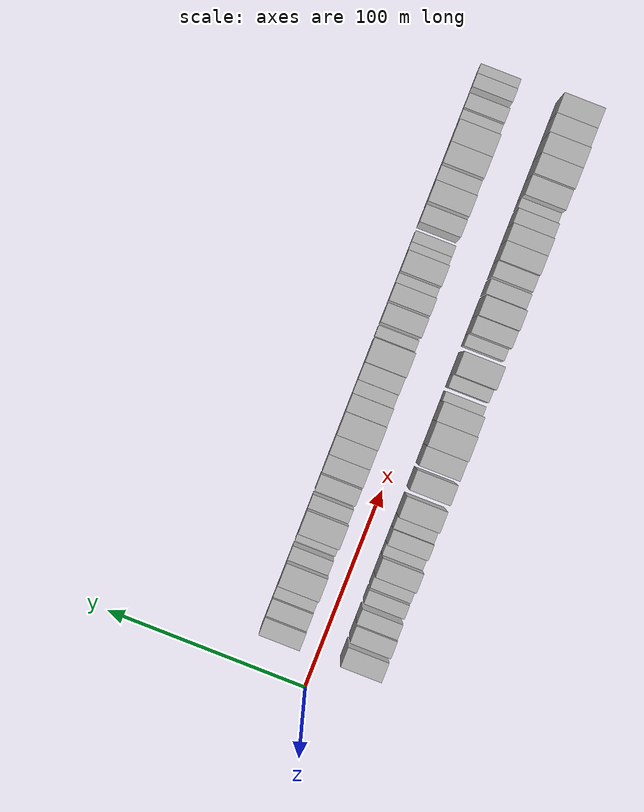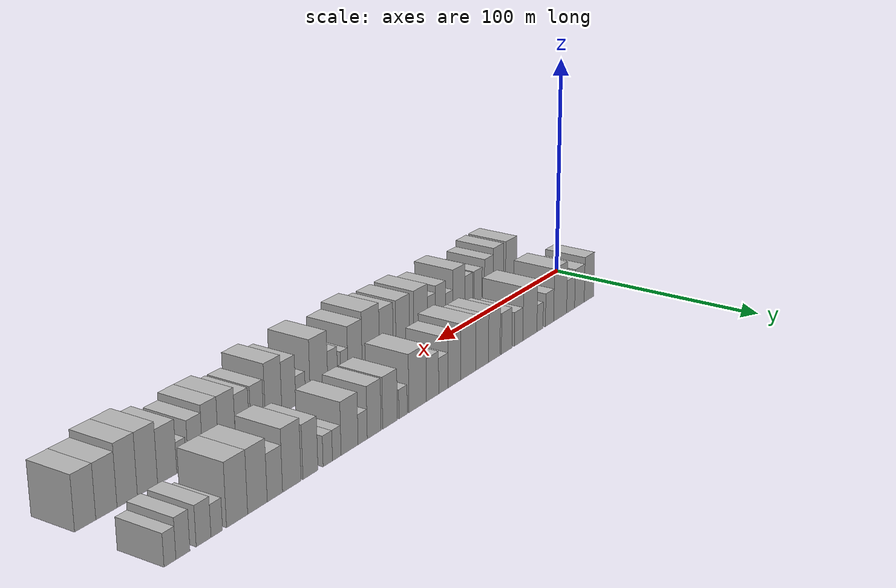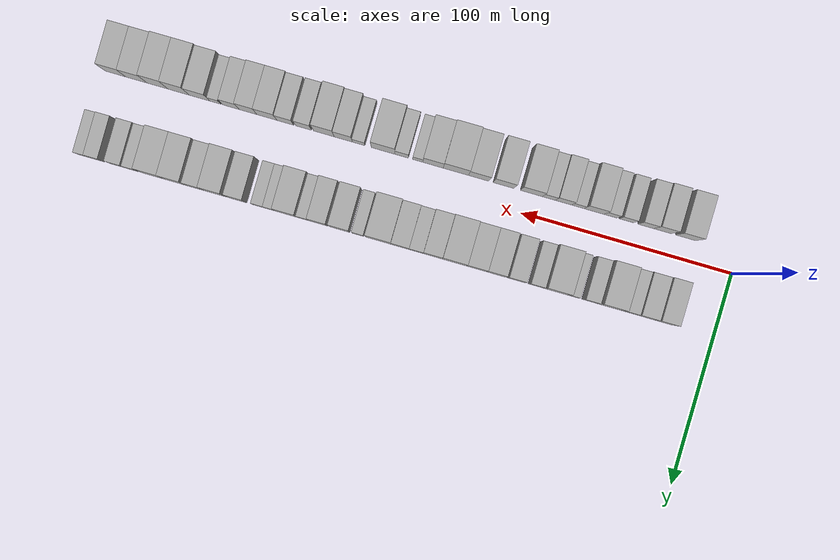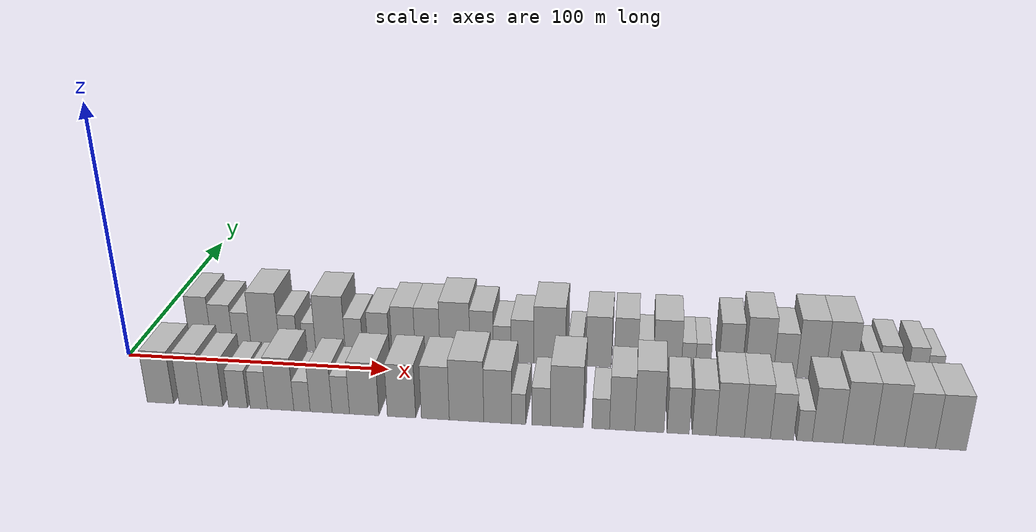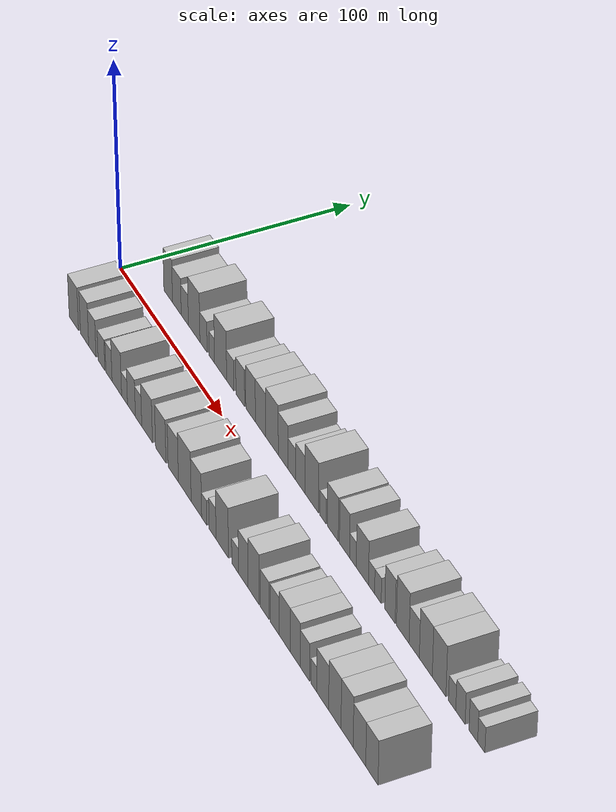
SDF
<sdf version="1.6">
 <world name="default">
  <scene>
   <sky><clouds><speed>12</speed></clouds></sky>
   <ambient>0.4 0.4 0.4 1</ambient>
   <background>0.7 0.7 0.7 1</background>
   <shadows>1</shadows>
  </scene>
  <gravity>0 0 -9.8066</gravity>
  <magnetic_field>6e-06 2.3e-05 -4.2e-05</magnetic_field>
  <physics default="0" name="default_physics" type="ode">
   <ode>
    <solver>
     <type>quick</type>
     <iters>10</iters>
     <sor>1.0</sor>
     <use_dynamic_moi_rescaling>0</use_dynamic_moi_rescaling>
    </solver>
    <constraints>
     <cfm>0</cfm>
     <erp>0.2</erp>
     <contact_max_correcting_vel>100</contact_max_correcting_vel>
     <contact_surface_layer>0.001</contact_surface_layer>
    </constraints>
   </ode>
   <max_step_size>0.004</max_step_size>
   <real_time_factor>1</real_time_factor>
   <real_time_update_rate>250</real_time_update_rate>
  </physics>
  <light name="sun" type="directional">
   <pose>0 0 10 0 0 0</pose>
   <diffuse>0.8 0.8 0.8 1</diffuse>
   <specular>0.2 0.2 0.2 1</specular>
   <attenuation>
    <range>1000</range>
    <constant>0.9</constant>
    <linear>0.01</linear>
    <quadratic>0.001</quadratic>
   </attenuation>
   <direction>-0.5 0.1 -0.9</direction>
  </light>
  <model name="building_1">
   <static>1</static>
   <pose>24.3117 20.0000 0 0.000000 0.000000 1.570796</pose>
   <link name="link">
    <pose>0 0 10.50 0 0 0</pose>
    <collision name="collision"><geometry><box><size>20.0000 8.6234 21.0000</size></box></geometry></collision>
    <visual name="visual">
     <cast_shadows>0</cast_shadows>
     <geometry><box><size>20.0000 8.6234 21.0000</size></box></geometry>
     <material>
      <script>
       <uri>model://HANNAS_wall/materials/scripts</uri>
       <uri>model://HANNAS_wall/materials/textures</uri>
       <name>vrc/HANNAS_wall</name>
      </script>
     </material>
    </visual>
   </link>
  </model>
  <model name="building_2">
   <static>1</static>
   <pose>32.9170 20.0000 0 0.000000 0.000000 1.570796</pose>
   <link name="link">
    <pose>0 0 9.00 0 0 0</pose>
    <collision name="collision"><geometry><box><size>20.0000 8.5872 18.0000</size></box></geometry></collision>
    <visual name="visual">
     <cast_shadows>0</cast_shadows>
     <geometry><box><size>20.0000 8.5872 18.0000</size></box></geometry>
     <material>
      <script>
       <uri>model://HANNAS_wall/materials/scripts</uri>
       <uri>model://HANNAS_wall/materials/textures</uri>
       <name>vrc/HANNAS_wall</name>
      </script>
     </material>
    </visual>
   </link>
  </model>
  <model name="building_3">
   <static>1</static>
   <pose>40.7467 20.0000 0 0.000000 0.000000 1.570796</pose>
   <link name="link">
    <pose>0 0 7.50 0 0 0</pose>
    <collision name="collision"><geometry><box><size>20.0000 7.0722 15.0000</size></box></geometry></collision>
    <visual name="visual">
     <cast_shadows>0</cast_shadows>
     <geometry><box><size>20.0000 7.0722 15.0000</size></box></geometry>
     <material>
      <script>
       <uri>model://HANNAS_wall/materials/scripts</uri>
       <uri>model://HANNAS_wall/materials/textures</uri>
       <name>vrc/HANNAS_wall</name>
      </script>
     </material>
    </visual>
   </link>
  </model>
  <model name="building_4">
   <static>1</static>
   <pose>49.9122 20.0000 0 0.000000 0.000000 1.570796</pose>
   <link name="link">
    <pose>0 0 12.00 0 0 0</pose>
    <collision name="collision"><geometry><box><size>20.0000 11.2589 24.0000</size></box></geometry></collision>
    <visual name="visual">
     <cast_shadows>0</cast_shadows>
     <geometry><box><size>20.0000 11.2589 24.0000</size></box></geometry>
     <material>
      <script>
       <uri>model://HANNAS_wall/materials/scripts</uri>
       <uri>model://HANNAS_wall/materials/textures</uri>
       <name>vrc/HANNAS_wall</name>
      </script>
     </material>
    </visual>
   </link>
  </model>
  <model name="building_5">
   <static>1</static>
   <pose>59.0413 20.0000 0 0.000000 0.000000 1.570796</pose>
   <link name="link">
    <pose>0 0 7.50 0 0 0</pose>
    <collision name="collision"><geometry><box><size>20.0000 6.9991 15.0000</size></box></geometry></collision>
    <visual name="visual">
     <cast_shadows>0</cast_shadows>
     <geometry><box><size>20.0000 6.9991 15.0000</size></box></geometry>
     <material>
      <script>
       <uri>model://HANNAS_wall/materials/scripts</uri>
       <uri>model://HANNAS_wall/materials/textures</uri>
       <name>vrc/HANNAS_wall</name>
      </script>
     </material>
    </visual>
   </link>
  </model>
  <model name="building_6">
   <static>1</static>
   <pose>67.0757 20.0000 0 0.000000 0.000000 1.570796</pose>
   <link name="link">
    <pose>0 0 6.00 0 0 0</pose>
    <collision name="collision"><geometry><box><size>20.0000 5.0698 12.0000</size></box></geometry></collision>
    <visual name="visual">
     <cast_shadows>0</cast_shadows>
     <geometry><box><size>20.0000 5.0698 12.0000</size></box></geometry>
     <material>
      <script>
       <uri>model://HANNAS_wall/materials/scripts</uri>
       <uri>model://HANNAS_wall/materials/textures</uri>
       <name>vrc/HANNAS_wall</name>
      </script>
     </material>
    </visual>
   </link>
  </model>
  <model name="building_7">
   <static>1</static>
   <pose>75.3780 20.0000 0 0.000000 0.000000 1.570796</pose>
   <link name="link">
    <pose>0 0 12.00 0 0 0</pose>
    <collision name="collision"><geometry><box><size>20.0000 11.5348 24.0000</size></box></geometry></collision>
    <visual name="visual">
     <cast_shadows>0</cast_shadows>
     <geometry><box><size>20.0000 11.5348 24.0000</size></box></geometry>
     <material>
      <script>
       <uri>model://HANNAS_wall/materials/scripts</uri>
       <uri>model://HANNAS_wall/materials/textures</uri>
       <name>vrc/HANNAS_wall</name>
      </script>
     </material>
    </visual>
   </link>
  </model>
  <model name="building_8">
   <static>1</static>
   <pose>84.5590 20.0000 0 0.000000 0.000000 1.570796</pose>
   <link name="link">
    <pose>0 0 7.50 0 0 0</pose>
    <collision name="collision"><geometry><box><size>20.0000 6.8272 15.0000</size></box></geometry></collision>
    <visual name="visual">
     <cast_shadows>0</cast_shadows>
     <geometry><box><size>20.0000 6.8272 15.0000</size></box></geometry>
     <material>
      <script>
       <uri>model://HANNAS_wall/materials/scripts</uri>
       <uri>model://HANNAS_wall/materials/textures</uri>
       <name>vrc/HANNAS_wall</name>
      </script>
     </material>
    </visual>
   </link>
  </model>
  <model name="building_9">
   <static>1</static>
   <pose>94.1099 20.0000 0 0.000000 0.000000 1.570796</pose>
   <link name="link">
    <pose>0 0 9.00 0 0 0</pose>
    <collision name="collision"><geometry><box><size>20.0000 8.2747 18.0000</size></box></geometry></collision>
    <visual name="visual">
     <cast_shadows>0</cast_shadows>
     <geometry><box><size>20.0000 8.2747 18.0000</size></box></geometry>
     <material>
      <script>
       <uri>model://HANNAS_wall/materials/scripts</uri>
       <uri>model://HANNAS_wall/materials/textures</uri>
       <name>vrc/HANNAS_wall</name>
      </script>
     </material>
    </visual>
   </link>
  </model>
  <model name="building_10">
   <static>1</static>
   <pose>103.6849 20.0000 0 0.000000 0.000000 1.570796</pose>
   <link name="link">
    <pose>0 0 10.50 0 0 0</pose>
    <collision name="collision"><geometry><box><size>20.0000 8.8753 21.0000</size></box></geometry></collision>
    <visual name="visual">
     <cast_shadows>0</cast_shadows>
     <geometry><box><size>20.0000 8.8753 21.0000</size></box></geometry>
     <material>
      <script>
       <uri>model://HANNAS_wall/materials/scripts</uri>
       <uri>model://HANNAS_wall/materials/textures</uri>
       <name>vrc/HANNAS_wall</name>
      </script>
     </material>
    </visual>
   </link>
  </model>
  <model name="building_11">
   <static>1</static>
   <pose>112.8992 20.0000 0 0.000000 0.000000 1.570796</pose>
   <link name="link">
    <pose>0 0 10.50 0 0 0</pose>
    <collision name="collision"><geometry><box><size>20.0000 9.5532 21.0000</size></box></geometry></collision>
    <visual name="visual">
     <cast_shadows>0</cast_shadows>
     <geometry><box><size>20.0000 9.5532 21.0000</size></box></geometry>
     <material>
      <script>
       <uri>model://HANNAS_wall/materials/scripts</uri>
       <uri>model://HANNAS_wall/materials/textures</uri>
       <name>vrc/HANNAS_wall</name>
      </script>
     </material>
    </visual>
   </link>
  </model>
  <model name="building_12">
   <static>1</static>
   <pose>123.3784 20.0000 0 0.000000 0.000000 1.570796</pose>
   <link name="link">
    <pose>0 0 12.00 0 0 0</pose>
    <collision name="collision"><geometry><box><size>20.0000 11.4053 24.0000</size></box></geometry></collision>
    <visual name="visual">
     <cast_shadows>0</cast_shadows>
     <geometry><box><size>20.0000 11.4053 24.0000</size></box></geometry>
     <material>
      <script>
       <uri>model://HANNAS_wall/materials/scripts</uri>
       <uri>model://HANNAS_wall/materials/textures</uri>
       <name>vrc/HANNAS_wall</name>
      </script>
     </material>
    </visual>
   </link>
  </model>
  <model name="building_13">
   <static>1</static>
   <pose>133.4940 20.0000 0 0.000000 0.000000 1.570796</pose>
   <link name="link">
    <pose>0 0 10.50 0 0 0</pose>
    <collision name="collision"><geometry><box><size>20.0000 8.8259 21.0000</size></box></geometry></collision>
    <visual name="visual">
     <cast_shadows>0</cast_shadows>
     <geometry><box><size>20.0000 8.8259 21.0000</size></box></geometry>
     <material>
      <script>
       <uri>model://HANNAS_wall/materials/scripts</uri>
       <uri>model://HANNAS_wall/materials/textures</uri>
       <name>vrc/HANNAS_wall</name>
      </script>
     </material>
    </visual>
   </link>
  </model>
  <model name="building_14">
   <static>1</static>
   <pose>141.2551 20.0000 0 0.000000 0.000000 1.570796</pose>
   <link name="link">
    <pose>0 0 7.50 0 0 0</pose>
    <collision name="collision"><geometry><box><size>20.0000 6.6962 15.0000</size></box></geometry></collision>
    <visual name="visual">
     <cast_shadows>0</cast_shadows>
     <geometry><box><size>20.0000 6.6962 15.0000</size></box></geometry>
     <material>
      <script>
       <uri>model://HANNAS_wall/materials/scripts</uri>
       <uri>model://HANNAS_wall/materials/textures</uri>
       <name>vrc/HANNAS_wall</name>
      </script>
     </material>
    </visual>
   </link>
  </model>
  <model name="building_15">
   <static>1</static>
   <pose>148.8612 20.0000 0 0.000000 0.000000 1.570796</pose>
   <link name="link">
    <pose>0 0 9.00 0 0 0</pose>
    <collision name="collision"><geometry><box><size>20.0000 8.5161 18.0000</size></box></geometry></collision>
    <visual name="visual">
     <cast_shadows>0</cast_shadows>
     <geometry><box><size>20.0000 8.5161 18.0000</size></box></geometry>
     <material>
      <script>
       <uri>model://HANNAS_wall/materials/scripts</uri>
       <uri>model://HANNAS_wall/materials/textures</uri>
       <name>vrc/HANNAS_wall</name>
      </script>
     </material>
    </visual>
   </link>
  </model>
  <model name="building_16">
   <static>1</static>
   <pose>159.0766 20.0000 0 0.000000 0.000000 1.570796</pose>
   <link name="link">
    <pose>0 0 12.00 0 0 0</pose>
    <collision name="collision"><geometry><box><size>20.0000 11.9148 24.0000</size></box></geometry></collision>
    <visual name="visual">
     <cast_shadows>0</cast_shadows>
     <geometry><box><size>20.0000 11.9148 24.0000</size></box></geometry>
     <material>
      <script>
       <uri>model://HANNAS_wall/materials/scripts</uri>
       <uri>model://HANNAS_wall/materials/textures</uri>
       <name>vrc/HANNAS_wall</name>
      </script>
     </material>
    </visual>
   </link>
  </model>
  <model name="building_17">
   <static>1</static>
   <pose>168.8202 20.0000 0 0.000000 0.000000 1.570796</pose>
   <link name="link">
    <pose>0 0 6.00 0 0 0</pose>
    <collision name="collision"><geometry><box><size>20.0000 5.5725 12.0000</size></box></geometry></collision>
    <visual name="visual">
     <cast_shadows>0</cast_shadows>
     <geometry><box><size>20.0000 5.5725 12.0000</size></box></geometry>
     <material>
      <script>
       <uri>model://HANNAS_wall/materials/scripts</uri>
       <uri>model://HANNAS_wall/materials/textures</uri>
       <name>vrc/HANNAS_wall</name>
      </script>
     </material>
    </visual>
   </link>
  </model>
  <model name="building_18">
   <static>1</static>
   <pose>177.3707 20.0000 0 0.000000 0.000000 1.570796</pose>
   <link name="link">
    <pose>0 0 10.50 0 0 0</pose>
    <collision name="collision"><geometry><box><size>20.0000 9.5284 21.0000</size></box></geometry></collision>
    <visual name="visual">
     <cast_shadows>0</cast_shadows>
     <geometry><box><size>20.0000 9.5284 21.0000</size></box></geometry>
     <material>
      <script>
       <uri>model://HANNAS_wall/materials/scripts</uri>
       <uri>model://HANNAS_wall/materials/textures</uri>
       <name>vrc/HANNAS_wall</name>
      </script>
     </material>
    </visual>
   </link>
  </model>
  <model name="building_19">
   <static>1</static>
   <pose>187.5096 20.0000 0 0.000000 0.000000 1.570796</pose>
   <link name="link">
    <pose>0 0 10.50 0 0 0</pose>
    <collision name="collision"><geometry><box><size>20.0000 8.7494 21.0000</size></box></geometry></collision>
    <visual name="visual">
     <cast_shadows>0</cast_shadows>
     <geometry><box><size>20.0000 8.7494 21.0000</size></box></geometry>
     <material>
      <script>
       <uri>model://HANNAS_wall/materials/scripts</uri>
       <uri>model://HANNAS_wall/materials/textures</uri>
       <name>vrc/HANNAS_wall</name>
      </script>
     </material>
    </visual>
   </link>
  </model>
  <model name="building_20">
   <static>1</static>
   <pose>194.7217 20.0000 0 0.000000 0.000000 1.570796</pose>
   <link name="link">
    <pose>0 0 6.00 0 0 0</pose>
    <collision name="collision"><geometry><box><size>20.0000 5.6749 12.0000</size></box></geometry></collision>
    <visual name="visual">
     <cast_shadows>0</cast_shadows>
     <geometry><box><size>20.0000 5.6749 12.0000</size></box></geometry>
     <material>
      <script>
       <uri>model://HANNAS_wall/materials/scripts</uri>
       <uri>model://HANNAS_wall/materials/textures</uri>
       <name>vrc/HANNAS_wall</name>
      </script>
     </material>
    </visual>
   </link>
  </model>
  <model name="building_21">
   <static>1</static>
   <pose>202.7160 20.0000 0 0.000000 0.000000 1.570796</pose>
   <link name="link">
    <pose>0 0 10.50 0 0 0</pose>
    <collision name="collision"><geometry><box><size>20.0000 10.3136 21.0000</size></box></geometry></collision>
    <visual name="visual">
     <cast_shadows>0</cast_shadows>
     <geometry><box><size>20.0000 10.3136 21.0000</size></box></geometry>
     <material>
      <script>
       <uri>model://HANNAS_wall/materials/scripts</uri>
       <uri>model://HANNAS_wall/materials/textures</uri>
       <name>vrc/HANNAS_wall</name>
      </script>
     </material>
    </visual>
   </link>
  </model>
  <model name="building_22">
   <static>1</static>
   <pose>210.4509 20.0000 0 0.000000 0.000000 1.570796</pose>
   <link name="link">
    <pose>0 0 6.00 0 0 0</pose>
    <collision name="collision"><geometry><box><size>20.0000 5.1561 12.0000</size></box></geometry></collision>
    <visual name="visual">
     <cast_shadows>0</cast_shadows>
     <geometry><box><size>20.0000 5.1561 12.0000</size></box></geometry>
     <material>
      <script>
       <uri>model://HANNAS_wall/materials/scripts</uri>
       <uri>model://HANNAS_wall/materials/textures</uri>
       <name>vrc/HANNAS_wall</name>
      </script>
     </material>
    </visual>
   </link>
  </model>
  <model name="building_23">
   <static>1</static>
   <pose>215.7773 20.0000 0 0.000000 0.000000 1.570796</pose>
   <link name="link">
    <pose>0 0 6.00 0 0 0</pose>
    <collision name="collision"><geometry><box><size>20.0000 5.4966 12.0000</size></box></geometry></collision>
    <visual name="visual">
     <cast_shadows>0</cast_shadows>
     <geometry><box><size>20.0000 5.4966 12.0000</size></box></geometry>
     <material>
      <script>
       <uri>model://HANNAS_wall/materials/scripts</uri>
       <uri>model://HANNAS_wall/materials/textures</uri>
       <name>vrc/HANNAS_wall</name>
      </script>
     </material>
    </visual>
   </link>
  </model>
  <model name="building_24">
   <static>1</static>
   <pose>225.8295 20.0000 0 0.000000 0.000000 1.570796</pose>
   <link name="link">
    <pose>0 0 10.50 0 0 0</pose>
    <collision name="collision"><geometry><box><size>20.0000 8.6078 21.0000</size></box></geometry></collision>
    <visual name="visual">
     <cast_shadows>0</cast_shadows>
     <geometry><box><size>20.0000 8.6078 21.0000</size></box></geometry>
     <material>
      <script>
       <uri>model://HANNAS_wall/materials/scripts</uri>
       <uri>model://HANNAS_wall/materials/textures</uri>
       <name>vrc/HANNAS_wall</name>
      </script>
     </material>
    </visual>
   </link>
  </model>
  <model name="building_25">
   <static>1</static>
   <pose>236.2986 20.0000 0 0.000000 0.000000 1.570796</pose>
   <link name="link">
    <pose>0 0 12.00 0 0 0</pose>
    <collision name="collision"><geometry><box><size>20.0000 10.3304 24.0000</size></box></geometry></collision>
    <visual name="visual">
     <cast_shadows>0</cast_shadows>
     <geometry><box><size>20.0000 10.3304 24.0000</size></box></geometry>
     <material>
      <script>
       <uri>model://HANNAS_wall/materials/scripts</uri>
       <uri>model://HANNAS_wall/materials/textures</uri>
       <name>vrc/HANNAS_wall</name>
      </script>
     </material>
    </visual>
   </link>
  </model>
  <model name="building_26">
   <static>1</static>
   <pose>245.6230 20.0000 0 0.000000 0.000000 1.570796</pose>
   <link name="link">
    <pose>0 0 9.00 0 0 0</pose>
    <collision name="collision"><geometry><box><size>20.0000 8.3184 18.0000</size></box></geometry></collision>
    <visual name="visual">
     <cast_shadows>0</cast_shadows>
     <geometry><box><size>20.0000 8.3184 18.0000</size></box></geometry>
     <material>
      <script>
       <uri>model://HANNAS_wall/materials/scripts</uri>
       <uri>model://HANNAS_wall/materials/textures</uri>
       <name>vrc/HANNAS_wall</name>
      </script>
     </material>
    </visual>
   </link>
  </model>
  <model name="building_27">
   <static>1</static>
   <pose>254.9688 20.0000 0 0.000000 0.000000 1.570796</pose>
   <link name="link">
    <pose>0 0 12.00 0 0 0</pose>
    <collision name="collision"><geometry><box><size>20.0000 10.3732 24.0000</size></box></geometry></collision>
    <visual name="visual">
     <cast_shadows>0</cast_shadows>
     <geometry><box><size>20.0000 10.3732 24.0000</size></box></geometry>
     <material>
      <script>
       <uri>model://HANNAS_wall/materials/scripts</uri>
       <uri>model://HANNAS_wall/materials/textures</uri>
       <name>vrc/HANNAS_wall</name>
      </script>
     </material>
    </visual>
   </link>
  </model>
  <model name="building_28">
   <static>1</static>
   <pose>265.5905 20.0000 0 0.000000 0.000000 1.570796</pose>
   <link name="link">
    <pose>0 0 12.00 0 0 0</pose>
    <collision name="collision"><geometry><box><size>20.0000 10.8702 24.0000</size></box></geometry></collision>
    <visual name="visual">
     <cast_shadows>0</cast_shadows>
     <geometry><box><size>20.0000 10.8702 24.0000</size></box></geometry>
     <material>
      <script>
       <uri>model://HANNAS_wall/materials/scripts</uri>
       <uri>model://HANNAS_wall/materials/textures</uri>
       <name>vrc/HANNAS_wall</name>
      </script>
     </material>
    </visual>
   </link>
  </model>
  <model name="building_29">
   <static>1</static>
   <pose>275.9027 20.0000 0 0.000000 0.000000 1.570796</pose>
   <link name="link">
    <pose>0 0 6.00 0 0 0</pose>
    <collision name="collision"><geometry><box><size>20.0000 5.7542 12.0000</size></box></geometry></collision>
    <visual name="visual">
     <cast_shadows>0</cast_shadows>
     <geometry><box><size>20.0000 5.7542 12.0000</size></box></geometry>
     <material>
      <script>
       <uri>model://HANNAS_wall/materials/scripts</uri>
       <uri>model://HANNAS_wall/materials/textures</uri>
       <name>vrc/HANNAS_wall</name>
      </script>
     </material>
    </visual>
   </link>
  </model>
  <model name="building_30">
   <static>1</static>
   <pose>282.4254 20.0000 0 0.000000 0.000000 1.570796</pose>
   <link name="link">
    <pose>0 0 7.50 0 0 0</pose>
    <collision name="collision"><geometry><box><size>20.0000 7.2912 15.0000</size></box></geometry></collision>
    <visual name="visual">
     <cast_shadows>0</cast_shadows>
     <geometry><box><size>20.0000 7.2912 15.0000</size></box></geometry>
     <material>
      <script>
       <uri>model://HANNAS_wall/materials/scripts</uri>
       <uri>model://HANNAS_wall/materials/textures</uri>
       <name>vrc/HANNAS_wall</name>
      </script>
     </material>
    </visual>
   </link>
  </model>
  <model name="building_31">
   <static>1</static>
   <pose>292.4112 20.0000 0 0.000000 0.000000 1.570796</pose>
   <link name="link">
    <pose>0 0 7.50 0 0 0</pose>
    <collision name="collision"><geometry><box><size>20.0000 6.6804 15.0000</size></box></geometry></collision>
    <visual name="visual">
     <cast_shadows>0</cast_shadows>
     <geometry><box><size>20.0000 6.6804 15.0000</size></box></geometry>
     <material>
      <script>
       <uri>model://HANNAS_wall/materials/scripts</uri>
       <uri>model://HANNAS_wall/materials/textures</uri>
       <name>vrc/HANNAS_wall</name>
      </script>
     </material>
    </visual>
   </link>
  </model>
  <model name="building_32">
   <static>1</static>
   <pose>298.5404 20.0000 0 0.000000 0.000000 1.570796</pose>
   <link name="link">
    <pose>0 0 6.00 0 0 0</pose>
    <collision name="collision"><geometry><box><size>20.0000 5.5781 12.0000</size></box></geometry></collision>
    <visual name="visual">
     <cast_shadows>0</cast_shadows>
     <geometry><box><size>20.0000 5.5781 12.0000</size></box></geometry>
     <material>
      <script>
       <uri>model://HANNAS_wall/materials/scripts</uri>
       <uri>model://HANNAS_wall/materials/textures</uri>
       <name>vrc/HANNAS_wall</name>
      </script>
     </material>
    </visual>
   </link>
  </model>
  <model name="building_33">
   <static>1</static>
   <pose>24.8160 -20.0000 0 0.000000 0.000000 1.570796</pose>
   <link name="link">
    <pose>0 0 10.50 0 0 0</pose>
    <collision name="collision"><geometry><box><size>20.0000 9.6321 21.0000</size></box></geometry></collision>
    <visual name="visual">
     <cast_shadows>0</cast_shadows>
     <geometry><box><size>20.0000 9.6321 21.0000</size></box></geometry>
     <material>
      <script>
       <uri>model://HANNAS_wall/materials/scripts</uri>
       <uri>model://HANNAS_wall/materials/textures</uri>
       <name>vrc/HANNAS_wall</name>
      </script>
     </material>
    </visual>
   </link>
  </model>
  <model name="building_34">
   <static>1</static>
   <pose>35.8480 -20.0000 0 0.000000 0.000000 1.570796</pose>
   <link name="link">
    <pose>0 0 10.50 0 0 0</pose>
    <collision name="collision"><geometry><box><size>20.0000 8.4320 21.0000</size></box></geometry></collision>
    <visual name="visual">
     <cast_shadows>0</cast_shadows>
     <geometry><box><size>20.0000 8.4320 21.0000</size></box></geometry>
     <material>
      <script>
       <uri>model://HANNAS_wall/materials/scripts</uri>
       <uri>model://HANNAS_wall/materials/textures</uri>
       <name>vrc/HANNAS_wall</name>
      </script>
     </material>
    </visual>
   </link>
  </model>
  <model name="building_35">
   <static>1</static>
   <pose>43.8123 -20.0000 0 0.000000 0.000000 1.570796</pose>
   <link name="link">
    <pose>0 0 9.00 0 0 0</pose>
    <collision name="collision"><geometry><box><size>20.0000 7.4966 18.0000</size></box></geometry></collision>
    <visual name="visual">
     <cast_shadows>0</cast_shadows>
     <geometry><box><size>20.0000 7.4966 18.0000</size></box></geometry>
     <material>
      <script>
       <uri>model://HANNAS_wall/materials/scripts</uri>
       <uri>model://HANNAS_wall/materials/textures</uri>
       <name>vrc/HANNAS_wall</name>
      </script>
     </material>
    </visual>
   </link>
  </model>
  <model name="building_36">
   <static>1</static>
   <pose>52.9857 -20.0000 0 0.000000 0.000000 1.570796</pose>
   <link name="link">
    <pose>0 0 7.50 0 0 0</pose>
    <collision name="collision"><geometry><box><size>20.0000 6.8501 15.0000</size></box></geometry></collision>
    <visual name="visual">
     <cast_shadows>0</cast_shadows>
     <geometry><box><size>20.0000 6.8501 15.0000</size></box></geometry>
     <material>
      <script>
       <uri>model://HANNAS_wall/materials/scripts</uri>
       <uri>model://HANNAS_wall/materials/textures</uri>
       <name>vrc/HANNAS_wall</name>
      </script>
     </material>
    </visual>
   </link>
  </model>
  <model name="building_37">
   <static>1</static>
   <pose>60.5205 -20.0000 0 0.000000 0.000000 1.570796</pose>
   <link name="link">
    <pose>0 0 7.50 0 0 0</pose>
    <collision name="collision"><geometry><box><size>20.0000 6.2196 15.0000</size></box></geometry></collision>
    <visual name="visual">
     <cast_shadows>0</cast_shadows>
     <geometry><box><size>20.0000 6.2196 15.0000</size></box></geometry>
     <material>
      <script>
       <uri>model://HANNAS_wall/materials/scripts</uri>
       <uri>model://HANNAS_wall/materials/textures</uri>
       <name>vrc/HANNAS_wall</name>
      </script>
     </material>
    </visual>
   </link>
  </model>
  <model name="building_38">
   <static>1</static>
   <pose>68.3613 -20.0000 0 0.000000 0.000000 1.570796</pose>
   <link name="link">
    <pose>0 0 10.50 0 0 0</pose>
    <collision name="collision"><geometry><box><size>20.0000 9.4619 21.0000</size></box></geometry></collision>
    <visual name="visual">
     <cast_shadows>0</cast_shadows>
     <geometry><box><size>20.0000 9.4619 21.0000</size></box></geometry>
     <material>
      <script>
       <uri>model://HANNAS_wall/materials/scripts</uri>
       <uri>model://HANNAS_wall/materials/textures</uri>
       <name>vrc/HANNAS_wall</name>
      </script>
     </material>
    </visual>
   </link>
  </model>
  <model name="building_39">
   <static>1</static>
   <pose>75.9973 -20.0000 0 0.000000 0.000000 1.570796</pose>
   <link name="link">
    <pose>0 0 6.00 0 0 0</pose>
    <collision name="collision"><geometry><box><size>20.0000 5.8101 12.0000</size></box></geometry></collision>
    <visual name="visual">
     <cast_shadows>0</cast_shadows>
     <geometry><box><size>20.0000 5.8101 12.0000</size></box></geometry>
     <material>
      <script>
       <uri>model://HANNAS_wall/materials/scripts</uri>
       <uri>model://HANNAS_wall/materials/textures</uri>
       <name>vrc/HANNAS_wall</name>
      </script>
     </material>
    </visual>
   </link>
  </model>
  <model name="building_40">
   <static>1</static>
   <pose>82.7998 -20.0000 0 0.000000 0.000000 1.570796</pose>
   <link name="link">
    <pose>0 0 9.00 0 0 0</pose>
    <collision name="collision"><geometry><box><size>20.0000 7.7949 18.0000</size></box></geometry></collision>
    <visual name="visual">
     <cast_shadows>0</cast_shadows>
     <geometry><box><size>20.0000 7.7949 18.0000</size></box></geometry>
     <material>
      <script>
       <uri>model://HANNAS_wall/materials/scripts</uri>
       <uri>model://HANNAS_wall/materials/textures</uri>
       <name>vrc/HANNAS_wall</name>
      </script>
     </material>
    </visual>
   </link>
  </model>
  <model name="building_41">
   <static>1</static>
   <pose>89.7791 -20.0000 0 0.000000 0.000000 1.570796</pose>
   <link name="link">
    <pose>0 0 7.50 0 0 0</pose>
    <collision name="collision"><geometry><box><size>20.0000 6.1637 15.0000</size></box></geometry></collision>
    <visual name="visual">
     <cast_shadows>0</cast_shadows>
     <geometry><box><size>20.0000 6.1637 15.0000</size></box></geometry>
     <material>
      <script>
       <uri>model://HANNAS_wall/materials/scripts</uri>
       <uri>model://HANNAS_wall/materials/textures</uri>
       <name>vrc/HANNAS_wall</name>
      </script>
     </material>
    </visual>
   </link>
  </model>
  <model name="building_42">
   <static>1</static>
   <pose>98.0552 -20.0000 0 0.000000 0.000000 1.570796</pose>
   <link name="link">
    <pose>0 0 10.50 0 0 0</pose>
    <collision name="collision"><geometry><box><size>20.0000 10.3885 21.0000</size></box></geometry></collision>
    <visual name="visual">
     <cast_shadows>0</cast_shadows>
     <geometry><box><size>20.0000 10.3885 21.0000</size></box></geometry>
     <material>
      <script>
       <uri>model://HANNAS_wall/materials/scripts</uri>
       <uri>model://HANNAS_wall/materials/textures</uri>
       <name>vrc/HANNAS_wall</name>
      </script>
     </material>
    </visual>
   </link>
  </model>
  <model name="building_43">
   <static>1</static>
   <pose>111.2123 -20.0000 0 0.000000 0.000000 1.570796</pose>
   <link name="link">
    <pose>0 0 10.50 0 0 0</pose>
    <collision name="collision"><geometry><box><size>20.0000 9.9257 21.0000</size></box></geometry></collision>
    <visual name="visual">
     <cast_shadows>0</cast_shadows>
     <geometry><box><size>20.0000 9.9257 21.0000</size></box></geometry>
     <material>
      <script>
       <uri>model://HANNAS_wall/materials/scripts</uri>
       <uri>model://HANNAS_wall/materials/textures</uri>
       <name>vrc/HANNAS_wall</name>
      </script>
     </material>
    </visual>
   </link>
  </model>
  <model name="building_44">
   <static>1</static>
   <pose>123.0410 -20.0000 0 0.000000 0.000000 1.570796</pose>
   <link name="link">
    <pose>0 0 10.50 0 0 0</pose>
    <collision name="collision"><geometry><box><size>20.0000 9.7318 21.0000</size></box></geometry></collision>
    <visual name="visual">
     <cast_shadows>0</cast_shadows>
     <geometry><box><size>20.0000 9.7318 21.0000</size></box></geometry>
     <material>
      <script>
       <uri>model://HANNAS_wall/materials/scripts</uri>
       <uri>model://HANNAS_wall/materials/textures</uri>
       <name>vrc/HANNAS_wall</name>
      </script>
     </material>
    </visual>
   </link>
  </model>
  <model name="building_45">
   <static>1</static>
   <pose>133.8875 -20.0000 0 0.000000 0.000000 1.570796</pose>
   <link name="link">
    <pose>0 0 12.00 0 0 0</pose>
    <collision name="collision"><geometry><box><size>20.0000 11.9613 24.0000</size></box></geometry></collision>
    <visual name="visual">
     <cast_shadows>0</cast_shadows>
     <geometry><box><size>20.0000 11.9613 24.0000</size></box></geometry>
     <material>
      <script>
       <uri>model://HANNAS_wall/materials/scripts</uri>
       <uri>model://HANNAS_wall/materials/textures</uri>
       <name>vrc/HANNAS_wall</name>
      </script>
     </material>
    </visual>
   </link>
  </model>
  <model name="building_46">
   <static>1</static>
   <pose>144.6852 -20.0000 0 0.000000 0.000000 1.570796</pose>
   <link name="link">
    <pose>0 0 10.50 0 0 0</pose>
    <collision name="collision"><geometry><box><size>20.0000 9.6340 21.0000</size></box></geometry></collision>
    <visual name="visual">
     <cast_shadows>0</cast_shadows>
     <geometry><box><size>20.0000 9.6340 21.0000</size></box></geometry>
     <material>
      <script>
       <uri>model://HANNAS_wall/materials/scripts</uri>
       <uri>model://HANNAS_wall/materials/textures</uri>
       <name>vrc/HANNAS_wall</name>
      </script>
     </material>
    </visual>
   </link>
  </model>
  <model name="building_47">
   <static>1</static>
   <pose>151.9218 -20.0000 0 0.000000 0.000000 1.570796</pose>
   <link name="link">
    <pose>0 0 6.00 0 0 0</pose>
    <collision name="collision"><geometry><box><size>20.0000 4.8394 12.0000</size></box></geometry></collision>
    <visual name="visual">
     <cast_shadows>0</cast_shadows>
     <geometry><box><size>20.0000 4.8394 12.0000</size></box></geometry>
     <material>
      <script>
       <uri>model://HANNAS_wall/materials/scripts</uri>
       <uri>model://HANNAS_wall/materials/textures</uri>
       <name>vrc/HANNAS_wall</name>
      </script>
     </material>
    </visual>
   </link>
  </model>
  <model name="building_48">
   <static>1</static>
   <pose>159.5308 -20.0000 0 0.000000 0.000000 1.570796</pose>
   <link name="link">
    <pose>0 0 7.50 0 0 0</pose>
    <collision name="collision"><geometry><box><size>20.0000 6.3787 15.0000</size></box></geometry></collision>
    <visual name="visual">
     <cast_shadows>0</cast_shadows>
     <geometry><box><size>20.0000 6.3787 15.0000</size></box></geometry>
     <material>
      <script>
       <uri>model://HANNAS_wall/materials/scripts</uri>
       <uri>model://HANNAS_wall/materials/textures</uri>
       <name>vrc/HANNAS_wall</name>
      </script>
     </material>
    </visual>
   </link>
  </model>
  <model name="building_49">
   <static>1</static>
   <pose>168.3353 -20.0000 0 0.000000 0.000000 1.570796</pose>
   <link name="link">
    <pose>0 0 12.00 0 0 0</pose>
    <collision name="collision"><geometry><box><size>20.0000 11.2303 24.0000</size></box></geometry></collision>
    <visual name="visual">
     <cast_shadows>0</cast_shadows>
     <geometry><box><size>20.0000 11.2303 24.0000</size></box></geometry>
     <material>
      <script>
       <uri>model://HANNAS_wall/materials/scripts</uri>
       <uri>model://HANNAS_wall/materials/textures</uri>
       <name>vrc/HANNAS_wall</name>
      </script>
     </material>
    </visual>
   </link>
  </model>
  <model name="building_50">
   <static>1</static>
   <pose>179.9313 -20.0000 0 0.000000 0.000000 1.570796</pose>
   <link name="link">
    <pose>0 0 6.00 0 0 0</pose>
    <collision name="collision"><geometry><box><size>20.0000 5.9615 12.0000</size></box></geometry></collision>
    <visual name="visual">
     <cast_shadows>0</cast_shadows>
     <geometry><box><size>20.0000 5.9615 12.0000</size></box></geometry>
     <material>
      <script>
       <uri>model://HANNAS_wall/materials/scripts</uri>
       <uri>model://HANNAS_wall/materials/textures</uri>
       <name>vrc/HANNAS_wall</name>
      </script>
     </material>
    </visual>
   </link>
  </model>
  <model name="building_51">
   <static>1</static>
   <pose>187.1720 -20.0000 0 0.000000 0.000000 1.570796</pose>
   <link name="link">
    <pose>0 0 10.50 0 0 0</pose>
    <collision name="collision"><geometry><box><size>20.0000 8.5201 21.0000</size></box></geometry></collision>
    <visual name="visual">
     <cast_shadows>0</cast_shadows>
     <geometry><box><size>20.0000 8.5201 21.0000</size></box></geometry>
     <material>
      <script>
       <uri>model://HANNAS_wall/materials/scripts</uri>
       <uri>model://HANNAS_wall/materials/textures</uri>
       <name>vrc/HANNAS_wall</name>
      </script>
     </material>
    </visual>
   </link>
  </model>
  <model name="building_52">
   <static>1</static>
   <pose>196.3513 -20.0000 0 0.000000 0.000000 1.570796</pose>
   <link name="link">
    <pose>0 0 12.00 0 0 0</pose>
    <collision name="collision"><geometry><box><size>20.0000 9.8385 24.0000</size></box></geometry></collision>
    <visual name="visual">
     <cast_shadows>0</cast_shadows>
     <geometry><box><size>20.0000 9.8385 24.0000</size></box></geometry>
     <material>
      <script>
       <uri>model://HANNAS_wall/materials/scripts</uri>
       <uri>model://HANNAS_wall/materials/textures</uri>
       <name>vrc/HANNAS_wall</name>
      </script>
     </material>
    </visual>
   </link>
  </model>
  <model name="building_53">
   <static>1</static>
   <pose>205.9977 -20.0000 0 0.000000 0.000000 1.570796</pose>
   <link name="link">
    <pose>0 0 9.00 0 0 0</pose>
    <collision name="collision"><geometry><box><size>20.0000 7.4543 18.0000</size></box></geometry></collision>
    <visual name="visual">
     <cast_shadows>0</cast_shadows>
     <geometry><box><size>20.0000 7.4543 18.0000</size></box></geometry>
     <material>
      <script>
       <uri>model://HANNAS_wall/materials/scripts</uri>
       <uri>model://HANNAS_wall/materials/textures</uri>
       <name>vrc/HANNAS_wall</name>
      </script>
     </material>
    </visual>
   </link>
  </model>
  <model name="building_54">
   <static>1</static>
   <pose>214.6763 -20.0000 0 0.000000 0.000000 1.570796</pose>
   <link name="link">
    <pose>0 0 9.00 0 0 0</pose>
    <collision name="collision"><geometry><box><size>20.0000 7.9028 18.0000</size></box></geometry></collision>
    <visual name="visual">
     <cast_shadows>0</cast_shadows>
     <geometry><box><size>20.0000 7.9028 18.0000</size></box></geometry>
     <material>
      <script>
       <uri>model://HANNAS_wall/materials/scripts</uri>
       <uri>model://HANNAS_wall/materials/textures</uri>
       <name>vrc/HANNAS_wall</name>
      </script>
     </material>
    </visual>
   </link>
  </model>
  <model name="building_55">
   <static>1</static>
   <pose>223.3605 -20.0000 0 0.000000 0.000000 1.570796</pose>
   <link name="link">
    <pose>0 0 10.50 0 0 0</pose>
    <collision name="collision"><geometry><box><size>20.0000 9.4656 21.0000</size></box></geometry></collision>
    <visual name="visual">
     <cast_shadows>0</cast_shadows>
     <geometry><box><size>20.0000 9.4656 21.0000</size></box></geometry>
     <material>
      <script>
       <uri>model://HANNAS_wall/materials/scripts</uri>
       <uri>model://HANNAS_wall/materials/textures</uri>
       <name>vrc/HANNAS_wall</name>
      </script>
     </material>
    </visual>
   </link>
  </model>
  <model name="building_56">
   <static>1</static>
   <pose>232.3767 -20.0000 0 0.000000 0.000000 1.570796</pose>
   <link name="link">
    <pose>0 0 10.50 0 0 0</pose>
    <collision name="collision"><geometry><box><size>20.0000 8.5668 21.0000</size></box></geometry></collision>
    <visual name="visual">
     <cast_shadows>0</cast_shadows>
     <geometry><box><size>20.0000 8.5668 21.0000</size></box></geometry>
     <material>
      <script>
       <uri>model://HANNAS_wall/materials/scripts</uri>
       <uri>model://HANNAS_wall/materials/textures</uri>
       <name>vrc/HANNAS_wall</name>
      </script>
     </material>
    </visual>
   </link>
  </model>
  <model name="building_57">
   <static>1</static>
   <pose>240.4911 -20.0000 0 0.000000 0.000000 1.570796</pose>
   <link name="link">
    <pose>0 0 9.00 0 0 0</pose>
    <collision name="collision"><geometry><box><size>20.0000 7.6621 18.0000</size></box></geometry></collision>
    <visual name="visual">
     <cast_shadows>0</cast_shadows>
     <geometry><box><size>20.0000 7.6621 18.0000</size></box></geometry>
     <material>
      <script>
       <uri>model://HANNAS_wall/materials/scripts</uri>
       <uri>model://HANNAS_wall/materials/textures</uri>
       <name>vrc/HANNAS_wall</name>
      </script>
     </material>
    </visual>
   </link>
  </model>
  <model name="building_58">
   <static>1</static>
   <pose>247.8712 -20.0000 0 0.000000 0.000000 1.570796</pose>
   <link name="link">
    <pose>0 0 6.00 0 0 0</pose>
    <collision name="collision"><geometry><box><size>20.0000 5.0982 12.0000</size></box></geometry></collision>
    <visual name="visual">
     <cast_shadows>0</cast_shadows>
     <geometry><box><size>20.0000 5.0982 12.0000</size></box></geometry>
     <material>
      <script>
       <uri>model://HANNAS_wall/materials/scripts</uri>
       <uri>model://HANNAS_wall/materials/textures</uri>
       <name>vrc/HANNAS_wall</name>
      </script>
     </material>
    </visual>
   </link>
  </model>
  <model name="building_59">
   <static>1</static>
   <pose>255.3561 -20.0000 0 0.000000 0.000000 1.570796</pose>
   <link name="link">
    <pose>0 0 10.50 0 0 0</pose>
    <collision name="collision"><geometry><box><size>20.0000 9.8717 21.0000</size></box></geometry></collision>
    <visual name="visual">
     <cast_shadows>0</cast_shadows>
     <geometry><box><size>20.0000 9.8717 21.0000</size></box></geometry>
     <material>
      <script>
       <uri>model://HANNAS_wall/materials/scripts</uri>
       <uri>model://HANNAS_wall/materials/textures</uri>
       <name>vrc/HANNAS_wall</name>
      </script>
     </material>
    </visual>
   </link>
  </model>
  <model name="building_60">
   <static>1</static>
   <pose>265.3537 -20.0000 0 0.000000 0.000000 1.570796</pose>
   <link name="link">
    <pose>0 0 12.00 0 0 0</pose>
    <collision name="collision"><geometry><box><size>20.0000 10.1234 24.0000</size></box></geometry></collision>
    <visual name="visual">
     <cast_shadows>0</cast_shadows>
     <geometry><box><size>20.0000 10.1234 24.0000</size></box></geometry>
     <material>
      <script>
       <uri>model://HANNAS_wall/materials/scripts</uri>
       <uri>model://HANNAS_wall/materials/textures</uri>
       <name>vrc/HANNAS_wall</name>
      </script>
     </material>
    </visual>
   </link>
  </model>
  <model name="building_61">
   <static>1</static>
   <pose>275.3757 -20.0000 0 0.000000 0.000000 1.570796</pose>
   <link name="link">
    <pose>0 0 12.00 0 0 0</pose>
    <collision name="collision"><geometry><box><size>20.0000 9.9205 24.0000</size></box></geometry></collision>
    <visual name="visual">
     <cast_shadows>0</cast_shadows>
     <geometry><box><size>20.0000 9.9205 24.0000</size></box></geometry>
     <material>
      <script>
       <uri>model://HANNAS_wall/materials/scripts</uri>
       <uri>model://HANNAS_wall/materials/textures</uri>
       <name>vrc/HANNAS_wall</name>
      </script>
     </material>
    </visual>
   </link>
  </model>
  <model name="building_62">
   <static>1</static>
   <pose>285.3744 -20.0000 0 0.000000 0.000000 1.570796</pose>
   <link name="link">
    <pose>0 0 10.50 0 0 0</pose>
    <collision name="collision"><geometry><box><size>20.0000 10.0769 21.0000</size></box></geometry></collision>
    <visual name="visual">
     <cast_shadows>0</cast_shadows>
     <geometry><box><size>20.0000 10.0769 21.0000</size></box></geometry>
     <material>
      <script>
       <uri>model://HANNAS_wall/materials/scripts</uri>
       <uri>model://HANNAS_wall/materials/textures</uri>
       <name>vrc/HANNAS_wall</name>
      </script>
     </material>
    </visual>
   </link>
  </model>
  <model name="building_63">
   <static>1</static>
   <pose>295.3232 -20.0000 0 0.000000 0.000000 1.570796</pose>
   <link name="link">
    <pose>0 0 10.50 0 0 0</pose>
    <collision name="collision"><geometry><box><size>20.0000 9.8207 21.0000</size></box></geometry></collision>
    <visual name="visual">
     <cast_shadows>0</cast_shadows>
     <geometry><box><size>20.0000 9.8207 21.0000</size></box></geometry>
     <material>
      <script>
       <uri>model://HANNAS_wall/materials/scripts</uri>
       <uri>model://HANNAS_wall/materials/textures</uri>
       <name>vrc/HANNAS_wall</name>
      </script>
     </material>
    </visual>
   </link>
  </model>
 </world>
</sdf>
